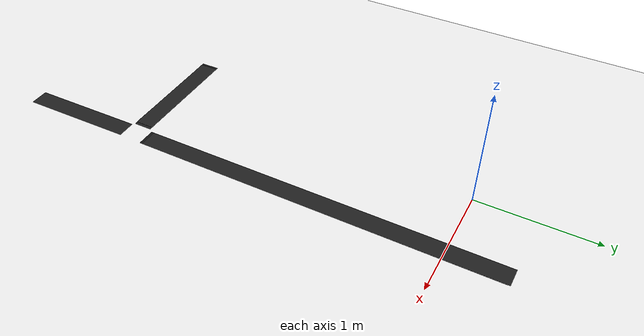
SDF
<sdf version="1.7">
 <world name="default">
  <model name="ground_plane">
   <static>1</static>
   <link name="link">
    <collision name="collision">
     <geometry><plane><normal>0 0 1</normal><size>100 100</size></plane></geometry>
     <surface>
      <contact><collide_bitmask>65535</collide_bitmask></contact>
      <friction><ode><mu>100</mu><mu2>50</mu2></ode></friction>
     </surface>
    </collision>
    <visual name="visual">
     <cast_shadows>0</cast_shadows>
     <geometry><plane><normal>0 0 1</normal><size>100 100</size></plane></geometry>
     <material>
      <script><uri>file://media/materials/scripts/gazebo.material</uri><name>Gazebo/White</name></script>
     </material>
    </visual>
   </link>
  </model>
  <model name="unit_box_clone_0_clone_clone_0">
   <link name="link">
    <inertial>
     <mass>1</mass>
     <inertia>
      <ixx>0.166667</ixx>
      <ixy>0</ixy>
      <ixz>0</ixz>
      <iyy>0.166667</iyy>
      <iyz>0</iyz>
      <izz>0.166667</izz>
     </inertia>
    </inertial>
    <visual name="visual">
     <geometry><box><size>1 0.160776 0.000937</size></box></geometry>
     <material>
      <script><name>Gazebo/Black</name><uri>file://media/materials/scripts/gazebo.material</uri></script>
      <shader type="pixel"><normal_map>__default__</normal_map></shader>
      <ambient>0 0 0 1</ambient>
      <diffuse>0 0 0 1</diffuse>
      <specular>0.1 0.1 0.1 1</specular>
      <emissive>0 0 0 1</emissive>
     </material>
    </visual>
    <collision name="collision">
     <geometry><box><size>1 0.160776 0.000937</size></box></geometry>
     <surface>
      <friction>
       <ode><mu>1</mu><mu2>1</mu2><fdir1>0 0 0</fdir1><slip1>0</slip1><slip2>0</slip2></ode>
       <torsional>
        <coefficient>1</coefficient>
        <patch_radius>0</patch_radius>
        <surface_radius>0</surface_radius>
        <use_patch_radius>1</use_patch_radius>
        <ode><slip>0</slip></ode>
       </torsional>
      </friction>
      <bounce><restitution_coefficient>0</restitution_coefficient><threshold>1e+06</threshold></bounce>
      <contact>
       <collide_without_contact>0</collide_without_contact>
       <collide_without_contact_bitmask>1</collide_without_contact_bitmask>
       <collide_bitmask>1</collide_bitmask>
       <ode>
        <soft_cfm>0</soft_cfm>
        <soft_erp>0.2</soft_erp>
        <kp>1e+13</kp>
        <kd>1</kd>
        <max_vel>0.01</max_vel>
        <min_depth>0</min_depth>
       </ode>
       <bullet>
        <split_impulse>1</split_impulse>
        <split_impulse_penetration_threshold>-0.01</split_impulse_penetration_threshold>
        <soft_cfm>0</soft_cfm>
        <soft_erp>0.2</soft_erp>
        <kp>1e+13</kp>
        <kd>1</kd>
       </bullet>
      </contact>
     </surface>
    </collision>
   </link>
   <static>0</static>
   <pose>-0.00876 -2.79035 0.002303 -1.6e-05 0.000101 -0.000577</pose>
  </model>
  <model name="unit_box_clone_0_clone_clone_clone_clone_clone_clone_clone_0_clone">
   <link name="link">
    <inertial>
     <mass>1</mass>
     <inertia>
      <ixx>0.166667</ixx>
      <ixy>0</ixy>
      <ixz>0</ixz>
      <iyy>0.166667</iyy>
      <iyz>0</iyz>
      <izz>0.166667</izz>
     </inertia>
    </inertial>
    <visual name="visual">
     <geometry><box><size>3.16167 0.161571 0.000937</size></box></geometry>
     <material>
      <script><name>Gazebo/Black</name><uri>file://media/materials/scripts/gazebo.material</uri></script>
      <shader type="pixel"><normal_map>__default__</normal_map></shader>
      <ambient>0 0 0 1</ambient>
      <diffuse>0 0 0 1</diffuse>
      <specular>0.1 0.1 0.1 1</specular>
      <emissive>0 0 0 1</emissive>
     </material>
    </visual>
    <collision name="collision">
     <geometry><box><size>3.16167 0.161571 0.000937</size></box></geometry>
     <surface>
      <friction>
       <ode><mu>1</mu><mu2>1</mu2><fdir1>0 0 0</fdir1><slip1>0</slip1><slip2>0</slip2></ode>
       <torsional>
        <coefficient>1</coefficient>
        <patch_radius>0</patch_radius>
        <surface_radius>0</surface_radius>
        <use_patch_radius>1</use_patch_radius>
        <ode><slip>0</slip></ode>
       </torsional>
      </friction>
      <bounce><restitution_coefficient>0</restitution_coefficient><threshold>1e+06</threshold></bounce>
      <contact>
       <collide_without_contact>0</collide_without_contact>
       <collide_without_contact_bitmask>1</collide_without_contact_bitmask>
       <collide_bitmask>1</collide_bitmask>
       <ode>
        <soft_cfm>0</soft_cfm>
        <soft_erp>0.2</soft_erp>
        <kp>1e+13</kp>
        <kd>1</kd>
        <max_vel>0.01</max_vel>
        <min_depth>0</min_depth>
       </ode>
       <bullet>
        <split_impulse>1</split_impulse>
        <split_impulse_penetration_threshold>-0.01</split_impulse_penetration_threshold>
        <soft_cfm>0</soft_cfm>
        <soft_erp>0.2</soft_erp>
        <kp>1e+13</kp>
        <kd>1</kd>
       </bullet>
      </contact>
     </surface>
    </collision>
   </link>
   <static>0</static>
   <pose>0.602162 -1.09713 0.000209 -5e-06 0.000164 -1.57417</pose>
  </model>
  <model name="unit_box_clone_0_clone_clone_0_clone_clone">
   <link name="link">
    <inertial>
     <mass>1</mass>
     <inertia>
      <ixx>0.166667</ixx>
      <ixy>0</ixy>
      <ixz>0</ixz>
      <iyy>0.166667</iyy>
      <iyz>0</iyz>
      <izz>0.166667</izz>
     </inertia>
    </inertial>
    <visual name="visual">
     <geometry><box><size>0.983697 0.160776 0.000937</size></box></geometry>
     <material>
      <script><name>Gazebo/Black</name><uri>file://media/materials/scripts/gazebo.material</uri></script>
      <shader type="pixel"><normal_map>__default__</normal_map></shader>
      <ambient>0 0 0 1</ambient>
      <diffuse>0 0 0 1</diffuse>
      <specular>0.1 0.1 0.1 1</specular>
      <emissive>0 0 0 1</emissive>
     </material>
    </visual>
    <collision name="collision">
     <geometry><box><size>0.983697 0.160776 0.000937</size></box></geometry>
     <surface>
      <friction>
       <ode><mu>1</mu><mu2>1</mu2><fdir1>0 0 0</fdir1><slip1>0</slip1><slip2>0</slip2></ode>
       <torsional>
        <coefficient>1</coefficient>
        <patch_radius>0</patch_radius>
        <surface_radius>0</surface_radius>
        <use_patch_radius>1</use_patch_radius>
        <ode><slip>0</slip></ode>
       </torsional>
      </friction>
      <bounce><restitution_coefficient>0</restitution_coefficient><threshold>1e+06</threshold></bounce>
      <contact>
       <collide_without_contact>0</collide_without_contact>
       <collide_without_contact_bitmask>1</collide_without_contact_bitmask>
       <collide_bitmask>1</collide_bitmask>
       <ode>
        <soft_cfm>0</soft_cfm>
        <soft_erp>0.2</soft_erp>
        <kp>1e+13</kp>
        <kd>1</kd>
        <max_vel>0.01</max_vel>
        <min_depth>0</min_depth>
       </ode>
       <bullet>
        <split_impulse>1</split_impulse>
        <split_impulse_penetration_threshold>-0.01</split_impulse_penetration_threshold>
        <soft_cfm>0</soft_cfm>
        <soft_erp>0.2</soft_erp>
        <kp>1e+13</kp>
        <kd>1</kd>
       </bullet>
      </contact>
     </surface>
    </collision>
   </link>
   <static>0</static>
   <pose>0.595049 -3.38053 0.000469 0 0 -1.56217</pose>
  </model>
  <model name="unit_box_clone_0_clone_clone_0_clone_0_clone_1">
   <link name="link">
    <inertial>
     <mass>1</mass>
     <inertia>
      <ixx>0.166667</ixx>
      <ixy>0</ixy>
      <ixz>0</ixz>
      <iyy>0.166667</iyy>
      <iyz>0</iyz>
      <izz>0.166667</izz>
     </inertia>
    </inertial>
    <visual name="visual">
     <geometry><box><size>1 0.160776 0.000937</size></box></geometry>
     <material>
      <script><name>Gazebo/Black</name><uri>file://media/materials/scripts/gazebo.material</uri></script>
      <shader type="pixel"><normal_map>__default__</normal_map></shader>
      <ambient>0 0 0 1</ambient>
      <diffuse>0 0 0 1</diffuse>
      <specular>0.1 0.1 0.1 1</specular>
      <emissive>0 0 0 1</emissive>
     </material>
    </visual>
    <collision name="collision">
     <geometry><box><size>1 0.160776 0.000937</size></box></geometry>
     <surface>
      <friction>
       <ode><mu>1</mu><mu2>1</mu2><fdir1>0 0 0</fdir1><slip1>0</slip1><slip2>0</slip2></ode>
       <torsional>
        <coefficient>1</coefficient>
        <patch_radius>0</patch_radius>
        <surface_radius>0</surface_radius>
        <use_patch_radius>1</use_patch_radius>
        <ode><slip>0</slip></ode>
       </torsional>
      </friction>
      <bounce><restitution_coefficient>0</restitution_coefficient><threshold>1e+06</threshold></bounce>
      <contact>
       <collide_without_contact>0</collide_without_contact>
       <collide_without_contact_bitmask>1</collide_without_contact_bitmask>
       <collide_bitmask>1</collide_bitmask>
       <ode>
        <soft_cfm>0</soft_cfm>
        <soft_erp>0.2</soft_erp>
        <kp>1e+13</kp>
        <kd>1</kd>
        <max_vel>0.01</max_vel>
        <min_depth>0</min_depth>
       </ode>
       <bullet>
        <split_impulse>1</split_impulse>
        <split_impulse_penetration_threshold>-0.01</split_impulse_penetration_threshold>
        <soft_cfm>0</soft_cfm>
        <soft_erp>0.2</soft_erp>
        <kp>1e+13</kp>
        <kd>1</kd>
       </bullet>
      </contact>
     </surface>
    </collision>
   </link>
   <static>0</static>
   <pose>-0.034887 -2.79132 0.003243 -3.7e-05 9.8e-05 -0.000521</pose>
  </model>
  <model name="unit_box_clone_0_clone_clone_0_clone_0_clone_2">
   <link name="link">
    <inertial>
     <mass>1</mass>
     <inertia>
      <ixx>0.166667</ixx>
      <ixy>0</ixy>
      <ixz>0</ixz>
      <iyy>0.166667</iyy>
      <iyz>0</iyz>
      <izz>0.166667</izz>
     </inertia>
    </inertial>
    <visual name="visual">
     <geometry><box><size>1 0.160776 0.000937</size></box></geometry>
     <material>
      <script><name>Gazebo/Black</name><uri>file://media/materials/scripts/gazebo.material</uri></script>
      <shader type="pixel"><normal_map>__default__</normal_map></shader>
      <ambient>0 0 0 1</ambient>
      <diffuse>0 0 0 1</diffuse>
      <specular>0.1 0.1 0.1 1</specular>
      <emissive>0 0 0 1</emissive>
     </material>
    </visual>
    <collision name="collision">
     <geometry><box><size>1 0.160776 0.000937</size></box></geometry>
     <surface>
      <friction>
       <ode><mu>1</mu><mu2>1</mu2><fdir1>0 0 0</fdir1><slip1>0</slip1><slip2>0</slip2></ode>
       <torsional>
        <coefficient>1</coefficient>
        <patch_radius>0</patch_radius>
        <surface_radius>0</surface_radius>
        <use_patch_radius>1</use_patch_radius>
        <ode><slip>0</slip></ode>
       </torsional>
      </friction>
      <bounce><restitution_coefficient>0</restitution_coefficient><threshold>1e+06</threshold></bounce>
      <contact>
       <collide_without_contact>0</collide_without_contact>
       <collide_without_contact_bitmask>1</collide_without_contact_bitmask>
       <collide_bitmask>1</collide_bitmask>
       <ode>
        <soft_cfm>0</soft_cfm>
        <soft_erp>0.2</soft_erp>
        <kp>1e+13</kp>
        <kd>1</kd>
        <max_vel>0.01</max_vel>
        <min_depth>0</min_depth>
       </ode>
       <bullet>
        <split_impulse>1</split_impulse>
        <split_impulse_penetration_threshold>-0.01</split_impulse_penetration_threshold>
        <soft_cfm>0</soft_cfm>
        <soft_erp>0.2</soft_erp>
        <kp>1e+13</kp>
        <kd>1</kd>
       </bullet>
      </contact>
     </surface>
    </collision>
   </link>
   <static>0</static>
   <pose>-0.033092 -2.79172 0.000468 -7e-06 2e-06 -0.000606</pose>
  </model>
  <model name="unit_box_clone_0_clone_clone_0_clone_0_clone_3">
   <link name="link">
    <inertial>
     <mass>1</mass>
     <inertia>
      <ixx>0.166667</ixx>
      <ixy>0</ixy>
      <ixz>0</ixz>
      <iyy>0.166667</iyy>
      <iyz>0</iyz>
      <izz>0.166667</izz>
     </inertia>
    </inertial>
    <visual name="visual">
     <geometry><box><size>1 0.160776 0.000937</size></box></geometry>
     <material>
      <script><name>Gazebo/Black</name><uri>file://media/materials/scripts/gazebo.material</uri></script>
      <shader type="pixel"><normal_map>__default__</normal_map></shader>
      <ambient>0 0 0 1</ambient>
      <diffuse>0 0 0 1</diffuse>
      <specular>0.1 0.1 0.1 1</specular>
      <emissive>0 0 0 1</emissive>
     </material>
    </visual>
    <collision name="collision">
     <geometry><box><size>1 0.160776 0.000937</size></box></geometry>
     <surface>
      <friction>
       <ode><mu>1</mu><mu2>1</mu2><fdir1>0 0 0</fdir1><slip1>0</slip1><slip2>0</slip2></ode>
       <torsional>
        <coefficient>1</coefficient>
        <patch_radius>0</patch_radius>
        <surface_radius>0</surface_radius>
        <use_patch_radius>1</use_patch_radius>
        <ode><slip>0</slip></ode>
       </torsional>
      </friction>
      <bounce><restitution_coefficient>0</restitution_coefficient><threshold>1e+06</threshold></bounce>
      <contact>
       <collide_without_contact>0</collide_without_contact>
       <collide_without_contact_bitmask>1</collide_without_contact_bitmask>
       <collide_bitmask>1</collide_bitmask>
       <ode>
        <soft_cfm>0</soft_cfm>
        <soft_erp>0.2</soft_erp>
        <kp>1e+13</kp>
        <kd>1</kd>
        <max_vel>0.01</max_vel>
        <min_depth>0</min_depth>
       </ode>
       <bullet>
        <split_impulse>1</split_impulse>
        <split_impulse_penetration_threshold>-0.01</split_impulse_penetration_threshold>
        <soft_cfm>0</soft_cfm>
        <soft_erp>0.2</soft_erp>
        <kp>1e+13</kp>
        <kd>1</kd>
       </bullet>
      </contact>
     </surface>
    </collision>
   </link>
   <static>0</static>
   <pose>-0.055498 -2.79247 0.001391 2e-06 4.1e-05 -0.002505</pose>
  </model>
  <model name="unit_box_clone_0_clone_clone_clone_clone_clone_clone_clone_0_clone_clone">
   <link name="link">
    <inertial>
     <mass>1</mass>
     <inertia>
      <ixx>0.166667</ixx>
      <ixy>0</ixy>
      <ixz>0</ixz>
      <iyy>0.166667</iyy>
      <iyz>0</iyz>
      <izz>0.166667</izz>
     </inertia>
    </inertial>
    <visual name="visual">
     <geometry><box><size>3.16167 0.161571 0.000937</size></box></geometry>
     <material>
      <script><name>Gazebo/Black</name><uri>file://media/materials/scripts/gazebo.material</uri></script>
      <shader type="pixel"><normal_map>__default__</normal_map></shader>
      <ambient>0 0 0 1</ambient>
      <diffuse>0 0 0 1</diffuse>
      <specular>0.1 0.1 0.1 1</specular>
      <emissive>0 0 0 1</emissive>
     </material>
    </visual>
    <collision name="collision">
     <geometry><box><size>3.16167 0.161571 0.000937</size></box></geometry>
     <surface>
      <friction>
       <ode><mu>1</mu><mu2>1</mu2><fdir1>0 0 0</fdir1><slip1>0</slip1><slip2>0</slip2></ode>
       <torsional>
        <coefficient>1</coefficient>
        <patch_radius>0</patch_radius>
        <surface_radius>0</surface_radius>
        <use_patch_radius>1</use_patch_radius>
        <ode><slip>0</slip></ode>
       </torsional>
      </friction>
      <bounce><restitution_coefficient>0</restitution_coefficient><threshold>1e+06</threshold></bounce>
      <contact>
       <collide_without_contact>0</collide_without_contact>
       <collide_without_contact_bitmask>1</collide_without_contact_bitmask>
       <collide_bitmask>1</collide_bitmask>
       <ode>
        <soft_cfm>0</soft_cfm>
        <soft_erp>0.2</soft_erp>
        <kp>1e+13</kp>
        <kd>1</kd>
        <max_vel>0.01</max_vel>
        <min_depth>0</min_depth>
       </ode>
       <bullet>
        <split_impulse>1</split_impulse>
        <split_impulse_penetration_threshold>-0.01</split_impulse_penetration_threshold>
        <soft_cfm>0</soft_cfm>
        <soft_erp>0.2</soft_erp>
        <kp>1e+13</kp>
        <kd>1</kd>
       </bullet>
      </contact>
     </surface>
    </collision>
   </link>
   <static>0</static>
   <pose>0.602076 -1.07222 0.001979 -3e-06 0.000236 -1.57374</pose>
  </model>
  <model name="unit_box_clone_0_clone_clone_clone_clone_clone_clone_clone_0_clone_clone_0">
   <link name="link">
    <inertial>
     <mass>1</mass>
     <inertia>
      <ixx>0.166667</ixx>
      <ixy>0</ixy>
      <ixz>0</ixz>
      <iyy>0.166667</iyy>
      <iyz>0</iyz>
      <izz>0.166667</izz>
     </inertia>
    </inertial>
    <visual name="visual">
     <geometry><box><size>3.16167 0.161571 0.000937</size></box></geometry>
     <material>
      <script><name>Gazebo/Black</name><uri>file://media/materials/scripts/gazebo.material</uri></script>
      <shader type="pixel"><normal_map>__default__</normal_map></shader>
      <ambient>0 0 0 1</ambient>
      <diffuse>0 0 0 1</diffuse>
      <specular>0.1 0.1 0.1 1</specular>
      <emissive>0 0 0 1</emissive>
     </material>
    </visual>
    <collision name="collision">
     <geometry><box><size>3.16167 0.161571 0.000937</size></box></geometry>
     <surface>
      <friction>
       <ode><mu>1</mu><mu2>1</mu2><fdir1>0 0 0</fdir1><slip1>0</slip1><slip2>0</slip2></ode>
       <torsional>
        <coefficient>1</coefficient>
        <patch_radius>0</patch_radius>
        <surface_radius>0</surface_radius>
        <use_patch_radius>1</use_patch_radius>
        <ode><slip>0</slip></ode>
       </torsional>
      </friction>
      <bounce><restitution_coefficient>0</restitution_coefficient><threshold>1e+06</threshold></bounce>
      <contact>
       <collide_without_contact>0</collide_without_contact>
       <collide_without_contact_bitmask>1</collide_without_contact_bitmask>
       <collide_bitmask>1</collide_bitmask>
       <ode>
        <soft_cfm>0</soft_cfm>
        <soft_erp>0.2</soft_erp>
        <kp>1e+13</kp>
        <kd>1</kd>
        <max_vel>0.01</max_vel>
        <min_depth>0</min_depth>
       </ode>
       <bullet>
        <split_impulse>1</split_impulse>
        <split_impulse_penetration_threshold>-0.01</split_impulse_penetration_threshold>
        <soft_cfm>0</soft_cfm>
        <soft_erp>0.2</soft_erp>
        <kp>1e+13</kp>
        <kd>1</kd>
       </bullet>
      </contact>
     </surface>
    </collision>
   </link>
   <static>0</static>
   <pose>0.602431 -1.08529 0.001151 -1.6e-05 0.000164 -1.5739</pose>
  </model>
 </world>
</sdf>
